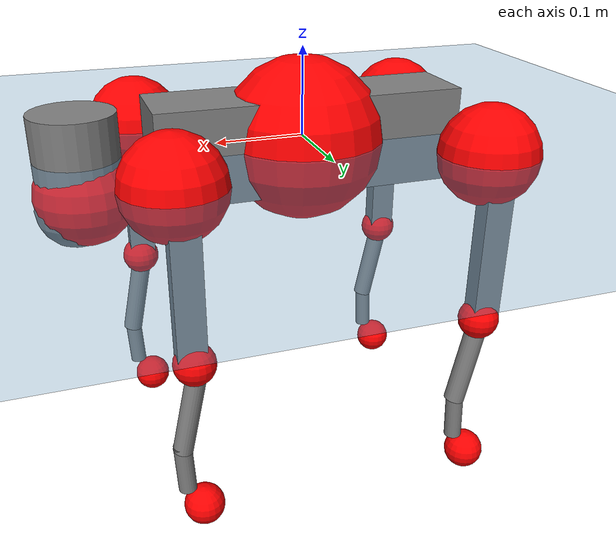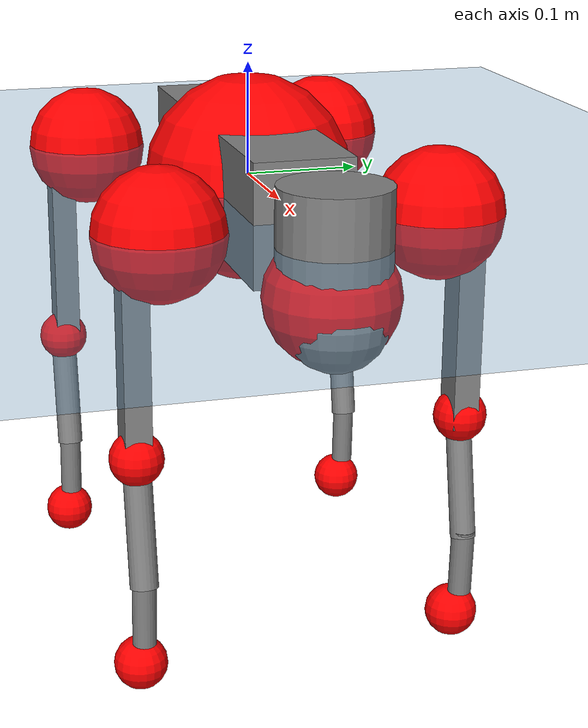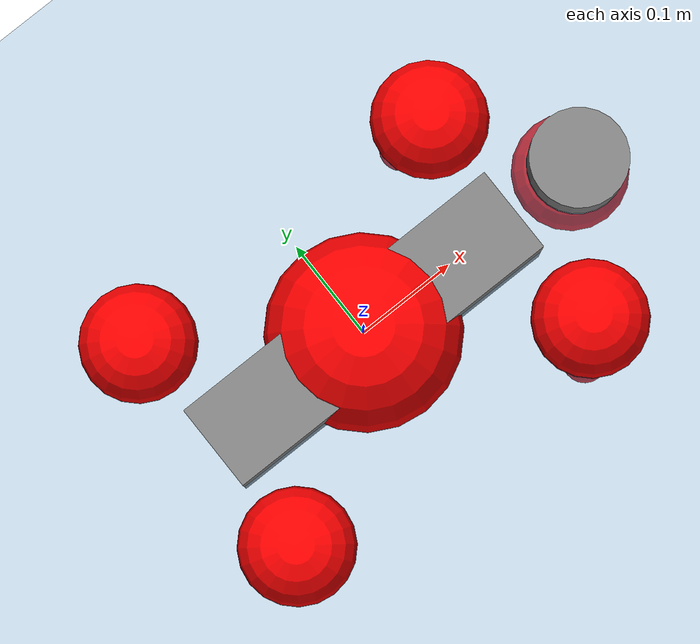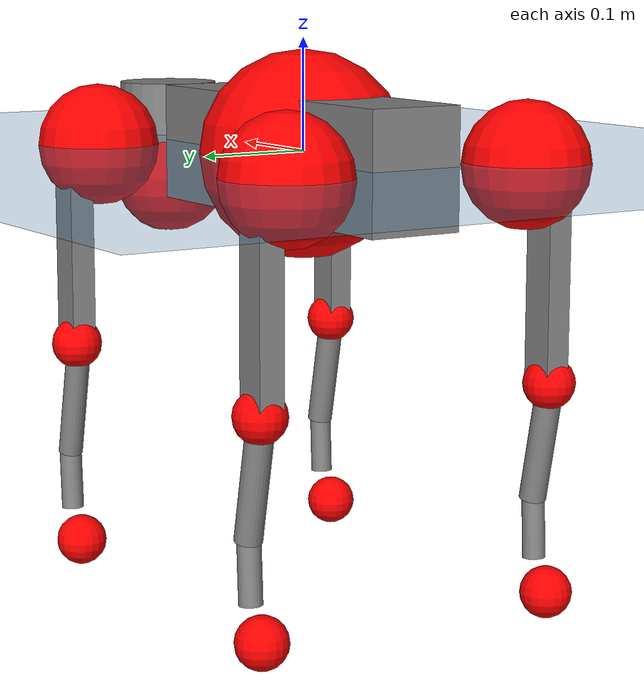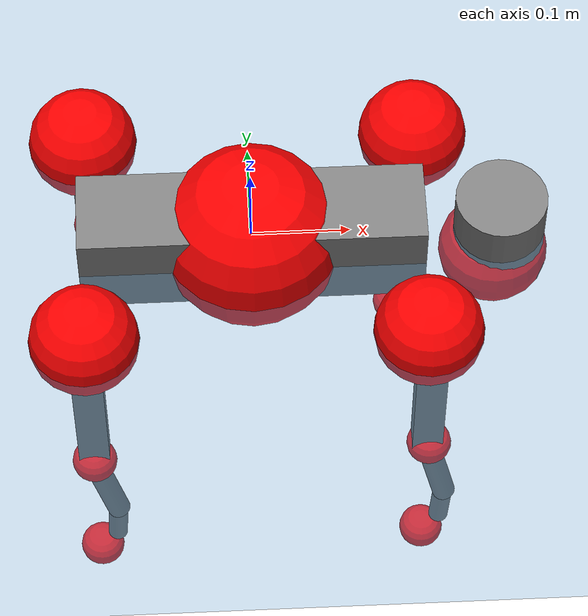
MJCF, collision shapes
<mujoco model="go2">
  <compiler angle="radian" assetdir="assets" balanceinertia="true" inertiafromgeom="false"/>

  <option timestep="0.005" density="1.2" viscosity="2e-05"/>

  <size nkey="1"/>

  <visual>
    <quality shadowsize="8192"/>
    <map shadowclip="0.5"/>
  </visual>

  <default>
    <default class="/">
      <geom contype="0" conaffinity="0" group="1" solref="-1000 -80"/>
      <site size="0.01 0.005 0.005" group="5"/>
      <general forcelimited="true" biastype="affine" gainprm="20" biasprm="0 -20 -0.5"/>
      <default class="go2">
        <joint armature="0.01" damping="0.01" frictionloss="0.2"/>
        <geom condim="1" margin="0.001"/>
        <default class="visual">
          <geom type="mesh" group="2"/>
        </default>
        <default class="collision">
          <geom group="3"/>
          <default class="foot">
            <geom size="0.022 0 0" condim="6" priority="1" friction="0.8 0.02 0.01" solimp="0.015 1 0.022"/>
          </default>
        </default>
        <default class="reward_collision_sphere">
          <geom group="5" rgba="1 0 0 1"/>
        </default>
      </default>
    </default>
  </default>

  <asset>
    <texture type="skybox" colorspace="auto" name="//unnamed_texture_0" builtin="gradient" rgb1="0.95 0.95 0.95" rgb2="0.95 0.95 0.95" width="100" height="600"/>
    <texture type="2d" colorspace="auto" name="texplane" builtin="checker" rgb1="0.345 0.575 0.748" rgb2="0.345 0.575 0.748" markrgb="1 1 1" width="512" height="512"/>
    <material name="MatPlane" class="/" texture="texplane" texuniform="true" texrepeat="2 2" specular="0.9"/>
    <material name="metal" class="/" rgba="0.9 0.95 0.95 1"/>
    <material name="black" class="/" rgba="0 0 0 1"/>
    <material name="white" class="/"/>
    <material name="gray" class="/" rgba="0.671705 0.692426 0.77427 1"/>
    <mesh name="base_0" class="/" file="base_0.obj"/>
    <mesh name="base_1" class="/" file="base_1.obj"/>
    <mesh name="base_2" class="/" file="base_2.obj"/>
    <mesh name="base_3" class="/" file="base_3.obj"/>
    <mesh name="base_4" class="/" file="base_4.obj"/>
    <mesh name="hip_0" class="/" file="hip_0.obj"/>
    <mesh name="hip_1" class="/" file="hip_1.obj"/>
    <mesh name="thigh_0" class="/" file="thigh_0.obj"/>
    <mesh name="thigh_1" class="/" file="thigh_1.obj"/>
    <mesh name="thigh_mirror_0" class="/" file="thigh_mirror_0.obj"/>
    <mesh name="thigh_mirror_1" class="/" file="thigh_mirror_1.obj"/>
    <mesh name="calf_0" class="/" file="calf_0.obj"/>
    <mesh name="calf_1" class="/" file="calf_1.obj"/>
    <mesh name="calf_mirror_0" class="/" file="calf_mirror_0.obj"/>
    <mesh name="calf_mirror_1" class="/" file="calf_mirror_1.obj"/>
    <mesh name="foot" class="/" file="foot.obj"/>
  </asset>

  <worldbody>
    <geom name="floor" class="/" size="100 100 0.125" type="plane" group="0" material="MatPlane"/>
    <light name="toplight_shadow" class="/" pos="0 0 5" dir="0.0990148 0.0990148 -0.990148" type="directional" ambient="0.04 0.04 0.04" diffuse="0.55 0.55 0.55" specular="0.12 0.12 0.12"/>
    <light name="toplight_fill" class="/" pos="0 0 5" dir="0.0990148 0.0990148 -0.990148" type="directional" castshadow="false" ambient="0.04 0.04 0.04" diffuse="0.3 0.3 0.3" specular="0.08 0.08 0.08"/>
    <body name="trunk" childclass="go2" pos="5.48699e-05 8.28107e-05 -0.00259432" quat="1 0.000115958 0.000126742 6.94767e-05">
      <inertial pos="0.0179912 0.00244514 -0.00206075" quat="-0.000472141 0.713462 -0.00176785 0.700691" mass="5.34371" diaginertia="0.0574844 0.102709 0.0130878"/>
      <joint name="//unnamed_joint_0" type="free" armature="0" damping="0" frictionloss="0"/>
      <geom name="//unnamed_geom_1" class="visual" material="black" mesh="base_0"/>
      <geom name="//unnamed_geom_2" class="visual" material="black" mesh="base_1"/>
      <geom name="//unnamed_geom_3" class="visual" material="black" mesh="base_2"/>
      <geom name="//unnamed_geom_4" class="visual" material="white" mesh="base_3"/>
      <geom name="//unnamed_geom_5" class="visual" material="gray" mesh="base_4"/>
      <geom name="trunk_1" class="collision" size="0.17437 0.0433376 0.0528394" type="box"/>
      <geom name="trunk_2" class="collision" size="0.0463503 0.0417153" pos="0.250892 0 0.00886239" type="cylinder"/>
      <geom name="trunk_3" class="collision" size="0.0435693" pos="0.257934 0 -0.0531743"/>
      <geom name="//unnamed_geom_9" class="reward_collision_sphere" size="0.0927007"/>
      <geom name="//unnamed_geom_10" class="reward_collision_sphere" size="0.0556204" pos="0.24649 0 -0.0398807"/>
      <site name="imu" pos="-0.0214851 -0.00911166 0.0398313" size="0.00927007"/>
      <camera name="track" pos="0 -2.02892 0" quat="0.707107 0.707107 0 0" mode="trackcom"/>
      <camera name="ego_camera" pos="0.274661 0 0.0398807" quat="-0.5 -0.5 0.5 0.5"/>
      <body name="FL_hip" pos="0.17024 0.0453951 0.000998621" quat="1 4.32508e-05 2.88447e-05 8.3446e-05">
        <inertial pos="-0.00743465 0.00198914 -0.00188841" quat="0.496525 0.502941 0.501741 0.498768" mass="0.545804" diaginertia="0.000468158 0.000628991 0.000269786"/>
        <joint name="FL_hip_joint" pos="0 0 0" axis="0.999986 2.02173e-05 -0.00535555" range="-1.06649 1.04984" armature="0.010316" damping="0.014499" frictionloss="0.159506"/>
        <geom name="//unnamed_geom_11" class="visual" material="metal" mesh="hip_0"/>
        <geom name="//unnamed_geom_12" class="visual" material="gray" mesh="hip_1"/>
        <geom name="//unnamed_geom_13" class="collision" size="0.0426423 0.0185401" pos="0 0.0811567 0" quat="0.707107 0.707107 0 0" type="cylinder"/>
        <geom name="//unnamed_geom_14" class="reward_collision_sphere" size="0.0556204" pos="0 0.0710121 0"/>
        <body name="FL_thigh" pos="-0.00145042 0.0975357 0.00290801" quat="1 -7.79223e-05 0.000135337 4.39642e-06">
          <inertial pos="-0.00427371 -0.0224829 -0.0305529" quat="0.829423 0.0844178 -0.0207654 0.551815" mass="0.878804" diaginertia="0.00313658 0.00626898 0.000450154"/>
          <joint name="FL_thigh_joint" pos="0 0 0" axis="0.0131411 0.999905 -0.00422333" range="-1.61687 3.51546" armature="0.00906981" damping="0.0117194" frictionloss="0.178556"/>
          <geom name="//unnamed_geom_15" class="visual" material="metal" mesh="thigh_0"/>
          <geom name="//unnamed_geom_16" class="visual" material="gray" mesh="thigh_1"/>
          <geom name="//unnamed_geom_17" class="collision" size="0.0987262 0.0113558 0.0157591" pos="0 0 -0.0943844" quat="0.707107 0 0.707107 0" type="box"/>
          <body name="FL_calf" pos="-0.00294109 0.00174823 -0.186303" quat="0.999999 -0.000519156 -0.00041927 0.00119838">
            <inertial pos="0.00592018 -0.000475491 -0.124763" quat="0.710382 0.00158134 -0.00468376 0.703799" mass="0.184937" diaginertia="0.000787333 0.00154357 2.7955e-05"/>
            <joint name="FL_calf_joint" pos="0 0 0" axis="0.00932779 0.999944 0.00507539" range="-2.74087 -0.817816" armature="0.008877" damping="0.0170073" frictionloss="0.161397"/>
            <geom name="//unnamed_geom_18" class="visual" material="gray" mesh="calf_0"/>
            <geom name="//unnamed_geom_19" class="visual" material="black" mesh="calf_1"/>
            <geom name="FL_calf0" class="collision" size="0.0111241 0.0556204" pos="0.00704258 0 -0.0531743" quat="0.994493 0 -0.104807 0" type="cylinder"/>
            <geom name="//unnamed_geom_21" class="collision" size="0.0101971 0.0301277" pos="0.0176064 0 -0.131163" quat="0.999688 0 0.0249974 0" type="cylinder"/>
            <geom name="//unnamed_geom_22" class="visual" pos="0 0 -0.188769" quat="1 0 0 0" material="black" mesh="foot"/>
            <geom name="FL_foot" class="foot" size="0.0186547" pos="-0.00176064 0 -0.188769"/>
            <geom name="//unnamed_geom_24" class="reward_collision_sphere" size="0.0231752"/>
            <geom name="//unnamed_geom_25" class="reward_collision_sphere" size="0.0231752" pos="-0.00176064 0 -0.188769"/>
            <site name="FL_foot" class="foot" pos="-0.00176064 0 -0.188769" size="0.00927007"/>
          </body>
        </body>
      </body>
      <body name="FR_hip" pos="0.171898 -0.0489382 -0.00046935" quat="0.999999 0.000642981 -0.000732568 -0.00113415">
        <inertial pos="-0.00445886 -0.00237064 0.000714358" quat="0.498448 0.50507 0.49984 0.496602" mass="0.520364" diaginertia="0.000453381 0.000607108 0.000262046"/>
        <joint name="FR_hip_joint" pos="0 0 0" axis="1 0.000265922 -0.000346756" stiffness="0.00968698" range="-0.995342 0.996373" armature="0.00904729" damping="0.0161716" frictionloss="0.164126"/>
        <geom name="//unnamed_geom_26" class="visual" pos="0 1.117e-09 4.79105e-08" quat="4.63268e-05 1 0 0" material="metal" mesh="hip_0"/>
        <geom name="//unnamed_geom_27" class="visual" pos="0 1.81079e-09 -1.18501e-07" quat="4.63268e-05 1 0 0" material="gray" mesh="hip_1"/>
        <geom name="//unnamed_geom_28" class="collision" size="0.0426423 0.0185401" pos="0 -0.0811567 0" quat="0.707107 0.707107 0 0" type="cylinder"/>
        <geom name="//unnamed_geom_29" class="reward_collision_sphere" size="0.0556204" pos="0 -0.0710121 0"/>
        <body name="FR_thigh" pos="0.00267882 -0.094661 -0.000305969" quat="1 8.19711e-05 -4.41516e-05 2.06566e-05">
          <inertial pos="-0.00339638 0.0238247 -0.0290593" quat="0.551595 -0.0199882 0.0847299 0.829557" mass="0.925962" diaginertia="0.00312552 0.00637272 0.000487658"/>
          <joint name="FR_thigh_joint" pos="0 0 0" axis="-0.00306157 -0.999977 -0.00609025" range="-3.44797 1.51597" armature="0.00951659" damping="0" frictionloss="0.192954"/>
          <geom name="//unnamed_geom_30" class="visual" material="metal" mesh="thigh_mirror_0"/>
          <geom name="//unnamed_geom_31" class="visual" material="gray" mesh="thigh_mirror_1"/>
          <geom name="//unnamed_geom_32" class="collision" size="0.0987262 0.0113558 0.0157591" pos="0 0 -0.0943844" quat="0.707107 0 0.707107 0" type="box"/>
          <body name="FR_calf" pos="0.00256139 0.000176734 -0.186409" quat="1 -0.00036705 -0.000186305 -0.00026172">
            <inertial pos="0.00508353 0.00156852 -0.123202" quat="0.702425 -0.00471358 0.00138411 0.71174" mass="0.187227" diaginertia="0.000807349 0.00156191 2.88487e-05"/>
            <joint name="FR_calf_joint" pos="0 0 0" axis="-0.00212627 -0.999987 0.0046469" range="0.831373 2.66469" armature="0.00909328" damping="0.0118556" frictionloss="0.165574"/>
            <geom name="//unnamed_geom_33" class="visual" material="gray" mesh="calf_mirror_0"/>
            <geom name="//unnamed_geom_34" class="visual" material="black" mesh="calf_mirror_1"/>
            <geom name="FR_calf0" class="collision" size="0.0120511 0.0556204" pos="0.00880322 0 -0.0531743" quat="0.995004 0 -0.0998334 0" type="cylinder"/>
            <geom name="//unnamed_geom_36" class="collision" size="0.0101971 0.0301277" pos="0.0176064 0 -0.131163" quat="0.999688 0 0.0249974 0" type="cylinder"/>
            <geom name="//unnamed_geom_37" class="visual" pos="0 0 -0.188769" quat="1 0 0 0" material="black" mesh="foot"/>
            <geom name="FR_foot" class="foot" size="0.0225126" pos="-0.00176064 0 -0.188769"/>
            <geom name="//unnamed_geom_39" class="reward_collision_sphere" size="0.0231752"/>
            <geom name="//unnamed_geom_40" class="reward_collision_sphere" size="0.0231752" pos="-0.00176064 0 -0.188769"/>
            <site name="FR_foot" class="foot" pos="-0.00176064 0 -0.188769" size="0.00927007"/>
          </body>
        </body>
      </body>
      <body name="RL_hip" pos="-0.169161 0.0501164 -8.84451e-05" quat="0.999999 0.00062129 0.000531905 -0.000754153">
        <inertial pos="0.00324386 -0.000510364 -0.00103533" quat="0.500895 0.502095 0.502673 0.494293" mass="0.52706" diaginertia="0.000468916 0.000660357 0.000259267"/>
        <joint name="RL_hip_joint" pos="0 0 0" axis="-0.999666 -0.016703 -0.0197071" range="-1.06397 1.01587" armature="0.00916902" damping="0" frictionloss="0.200282"/>
        <geom name="//unnamed_geom_41" class="visual" pos="5.15414e-11 0 1.01033e-08" quat="4.63268e-05 0 1 0" material="metal" mesh="hip_0"/>
        <geom name="//unnamed_geom_42" class="visual" pos="8.35548e-11 0 8.9602e-09" quat="4.63268e-05 0 1 0" material="gray" mesh="hip_1"/>
        <geom name="//unnamed_geom_43" class="collision" size="0.0426423 0.0185401" pos="0 0.0811567 0" quat="0.707107 0.707107 0 0" type="cylinder"/>
        <geom name="//unnamed_geom_44" class="reward_collision_sphere" size="0.0556204" pos="0 0.0710121 0"/>
        <body name="RL_thigh" pos="0.00013173 0.0938422 5.29241e-05" quat="1 0.000479087 -0.00055479 0.000576126">
          <inertial pos="-0.00343266 -0.0249451 -0.0290861" quat="0.831127 0.0842275 -0.0191791 0.549332" mass="0.914907" diaginertia="0.00329222 0.00633266 0.000505113"/>
          <joint name="RL_thigh_joint" pos="0 0 0" axis="0.00258554 0.999964 0.00809095" stiffness="0.0119548" range="-0.52711 4.52828" armature="0.009199" damping="0.003669" frictionloss="0.185704"/>
          <geom name="//unnamed_geom_45" class="visual" material="metal" mesh="thigh_0"/>
          <geom name="//unnamed_geom_46" class="visual" material="gray" mesh="thigh_1"/>
          <geom name="//unnamed_geom_47" class="collision" size="0.0987262 0.0113558 0.0157591" pos="0 0 -0.0943844" quat="0.707107 0 0.707107 0" type="box"/>
          <body name="RL_calf" pos="0.00284474 -0.000121638 -0.189079" quat="0.999999 -0.00101615 -0.000709188 -0.00081707">
            <inertial pos="0.00829776 -0.000427252 -0.127743" quat="0.710584 0.00154842 -0.00450199 0.703596" mass="0.190065" diaginertia="0.000807787 0.00166465 3.0472e-05"/>
            <joint name="RL_calf_joint" pos="0 0 0" axis="-0.0113967 0.999852 0.0128545" range="-2.72083 -0.873544" armature="0.00923033" damping="0.0126419" frictionloss="0.198576"/>
            <geom name="//unnamed_geom_48" class="visual" material="gray" mesh="calf_0"/>
            <geom name="//unnamed_geom_49" class="visual" material="black" mesh="calf_1"/>
            <geom name="RL_calf0" class="collision" size="0.0120511 0.0556204" pos="0.00880322 0 -0.0531743" quat="0.995004 0 -0.0998334 0" type="cylinder"/>
            <geom name="//unnamed_geom_51" class="collision" size="0.0101971 0.0301277" pos="0.0176064 0 -0.131163" quat="0.999688 0 0.0249974 0" type="cylinder"/>
            <geom name="//unnamed_geom_52" class="visual" pos="0 0 -0.188769" quat="1 0 0 0" material="black" mesh="foot"/>
            <geom name="RL_foot" class="foot" size="0.0165289" pos="-0.00176064 0 -0.188769"/>
            <geom name="//unnamed_geom_54" class="reward_collision_sphere" size="0.0231752"/>
            <geom name="//unnamed_geom_55" class="reward_collision_sphere" size="0.0231752" pos="-0.00176064 0 -0.188769"/>
            <site name="RL_foot" class="foot" pos="-0.00176064 0 -0.188769" size="0.00927007"/>
          </body>
        </body>
      </body>
      <body name="RR_hip" pos="-0.170236 -0.0450279 -0.000673946" quat="0.999999 6.87641e-05 0.00029775 -0.00126796">
        <inertial pos="0.00365948 -0.000399048 -0.000882973" quat="0.50027 0.505478 0.494183 0.500006" mass="0.527207" diaginertia="0.00046612 0.000609976 0.00025455"/>
        <joint name="RR_hip_joint" pos="0 0 0" axis="-0.99998 0.00384282 -0.00501247" range="-1.10412 1.02889" armature="0.00786655" damping="0.00115955" frictionloss="0.206078"/>
        <geom name="//unnamed_geom_56" class="visual" pos="-4.68977e-11 1.117e-09 -3.78072e-08" quat="2.14617e-09 4.63268e-05 4.63268e-05 -1" material="metal" mesh="hip_0"/>
        <geom name="//unnamed_geom_57" class="visual" pos="-9.50411e-11 1.81079e-09 1.27461e-07" quat="2.14617e-09 4.63268e-05 4.63268e-05 -1" material="gray" mesh="hip_1"/>
        <geom name="//unnamed_geom_58" class="collision" size="0.0426423 0.0185401" pos="0 -0.0811567 0" quat="0.707107 0.707107 0 0" type="cylinder"/>
        <geom name="//unnamed_geom_59" class="reward_collision_sphere" size="0.0556204" pos="0 -0.0710121 0"/>
        <body name="RR_thigh" pos="0.00085341 -0.0976357 -0.00247979" quat="1 -4.99003e-05 -9.54947e-05 -0.000103112">
          <inertial pos="-0.00309468 0.0247754 -0.0271038" quat="0.549097 -0.0321466 0.0788026 0.831414" mass="0.897197" diaginertia="0.00306885 0.00607289 0.00047207"/>
          <joint name="RR_thigh_joint" pos="0 0 0" axis="0.00246633 -0.999987 0.00455197" stiffness="0.0104928" range="-4.52287 0.470668" armature="0.0103775" damping="0.0135876" frictionloss="0.184272"/>
          <geom name="//unnamed_geom_60" class="visual" material="metal" mesh="thigh_mirror_0"/>
          <geom name="//unnamed_geom_61" class="visual" material="gray" mesh="thigh_mirror_1"/>
          <geom name="//unnamed_geom_62" class="collision" size="0.0987262 0.0113558 0.0157591" pos="0 0 -0.0943844" quat="0.707107 0 0.707107 0" type="box"/>
          <body name="RR_calf" pos="-0.000488153 -0.00306089 -0.189723" quat="0.999999 -0.00045472 -0.00132788 0.000188649">
            <inertial pos="0.00676362 0.00018169 -0.125924" quat="0.704058 -0.0167886 0.0029189 0.709938" mass="0.182203" diaginertia="0.000763001 0.001546 2.92338e-05"/>
            <joint name="RR_calf_joint" pos="0 0 0" axis="-0.00029278 -0.999947 0.0102746" stiffness="0.0103165" range="0.892304 2.78007" armature="0.00925696" damping="0.0160712" frictionloss="0.175486"/>
            <geom name="//unnamed_geom_63" class="visual" material="gray" mesh="calf_mirror_0"/>
            <geom name="//unnamed_geom_64" class="visual" material="black" mesh="calf_mirror_1"/>
            <geom name="RR_calf0" class="collision" size="0.0120511 0.0556204" pos="0.00880322 0 -0.0531743" quat="0.995004 0 -0.0998334 0" type="cylinder"/>
            <geom name="//unnamed_geom_66" class="collision" size="0.0101971 0.0301277" pos="0.0176064 0 -0.131163" quat="0.999688 0 0.0249974 0" type="cylinder"/>
            <geom name="//unnamed_geom_67" class="visual" pos="0 0 -0.188769" quat="1 0 0 0" material="black" mesh="foot"/>
            <geom name="RR_foot" class="foot" size="0.0198412" pos="-0.00176064 0 -0.188769"/>
            <geom name="//unnamed_geom_69" class="reward_collision_sphere" size="0.0231752"/>
            <geom name="//unnamed_geom_70" class="reward_collision_sphere" size="0.0231752" pos="-0.00176064 0 -0.188769"/>
            <site name="RR_foot" class="foot" pos="-0.00176064 0 -0.188769" size="0.00927007"/>
          </body>
        </body>
      </body>
    </body>
  </worldbody>

  <contact>
    <pair class="/" geom1="floor" geom2="FL_foot" name="//unnamed_contact_0"/>
    <pair class="/" geom1="floor" geom2="FR_foot" name="//unnamed_contact_1"/>
    <pair class="/" geom1="floor" geom2="RL_foot" name="//unnamed_contact_2"/>
    <pair class="/" geom1="floor" geom2="RR_foot" name="//unnamed_contact_3"/>
  </contact>

  <actuator>
    <general name="FL_hip" class="/" joint="FL_hip_joint" forcerange="-20.368 20.368" gainprm="19.8205" biasprm="0 -19.8205 -0.473084"/>
    <general name="FL_thigh" class="/" joint="FL_thigh_joint" forcerange="-20.23 20.23" gainprm="19.8205" biasprm="0 -19.8205 -0.473084"/>
    <general name="FL_calf" class="/" joint="FL_calf_joint" forcerange="-41.1875 41.1875" gainprm="19.8205" biasprm="0 -19.8205 -0.473084"/>
    <general name="FR_hip" class="/" joint="FR_hip_joint" forcerange="-22.1244 22.1244" gainprm="19.8205" biasprm="0 -19.8205 -0.473084"/>
    <general name="FR_thigh" class="/" joint="FR_thigh_joint" forcerange="-22.2006 22.2006" gainprm="19.8205" biasprm="0 -19.8205 -0.473084"/>
    <general name="FR_calf" class="/" joint="FR_calf_joint" forcerange="-40.1852 40.1852" gainprm="19.8205" biasprm="0 -19.8205 -0.473084"/>
    <general name="RL_hip" class="/" joint="RL_hip_joint" forcerange="-23.9595 23.9595" gainprm="19.8205" biasprm="0 -19.8205 -0.473084"/>
    <general name="RL_thigh" class="/" joint="RL_thigh_joint" forcerange="-22.0044 22.0044" gainprm="19.8205" biasprm="0 -19.8205 -0.473084"/>
    <general name="RL_calf" class="/" joint="RL_calf_joint" forcerange="-39.4676 39.4676" gainprm="19.8205" biasprm="0 -19.8205 -0.473084"/>
    <general name="RR_hip" class="/" joint="RR_hip_joint" forcerange="-20.1322 20.1322" gainprm="19.8205" biasprm="0 -19.8205 -0.473084"/>
    <general name="RR_thigh" class="/" joint="RR_thigh_joint" forcerange="-22.8128 22.8128" gainprm="19.8205" biasprm="0 -19.8205 -0.473084"/>
    <general name="RR_calf" class="/" joint="RR_calf_joint" forcerange="-43.6311 43.6311" gainprm="19.8205" biasprm="0 -19.8205 -0.473084"/>
  </actuator>

  <sensor>
    <gyro site="imu" name="imu_angular_velocity"/>
    <velocimeter site="imu" name="imu_linear_velocity"/>
    <framelinvel objtype="site" objname="FL_foot" name="FL_foot_global_linear_velocity"/>
    <framelinvel objtype="site" objname="FR_foot" name="FR_foot_global_linear_velocity"/>
    <framelinvel objtype="site" objname="RL_foot" name="RL_foot_global_linear_velocity"/>
    <framelinvel objtype="site" objname="RR_foot" name="RR_foot_global_linear_velocity"/>
  </sensor>

  <keyframe>
    <key name="home" qpos="0 0 0.325 1 0 0 0 0.1 0.8 -1.5 -0.1 -0.8 1.5 -0.1 0.8 -1.5 0.1 -0.8 1.5"/>
  </keyframe>
</mujoco>
